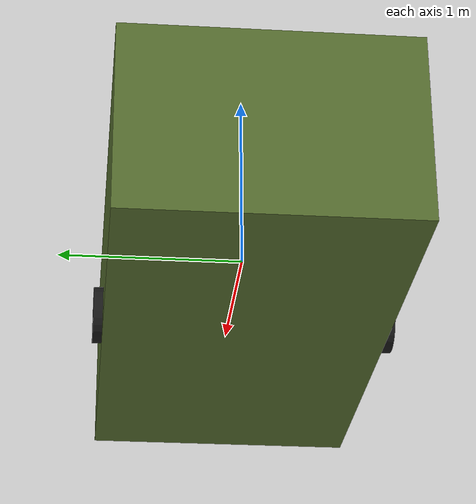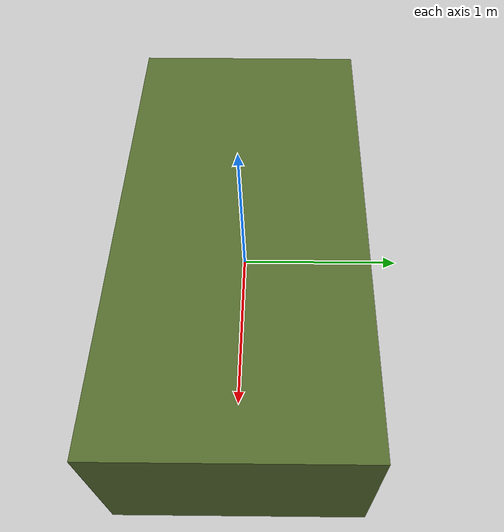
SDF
<?xml version="1.0"?>
<sdf version="1.9">
  <model name="tank">
    <static>false</static>

    <!-- Body: box 3.0 x 1.5 x 1.0 m, mass 50000 kg -->
    <link name="base_link">
      <inertial>
        <mass>50000</mass>
        <inertia>
          <ixx>13541.67</ixx><ixy>0</ixy><ixz>0</ixz>
          <iyy>41666.67</iyy><iyz>0</iyz>
          <izz>46875.00</izz>
        </inertia>
      </inertial>
      <collision name="body_collision">
        <geometry>
          <box><size>3.0 1.5 1.0</size></box>
        </geometry>
      </collision>
      <visual name="body_visual">
        <geometry>
          <box><size>3.0 1.5 1.0</size></box>
        </geometry>
        <material>
          <ambient>0.33 0.42 0.18 1</ambient>
          <diffuse>0.33 0.42 0.18 1</diffuse>
        </material>
      </visual>

      <!-- 2D Lidar sensor (360 deg, 500 m range, 10 Hz) -->
      <sensor name="lidar" type="gpu_lidar">
        <pose>0 0 0.55 0 0 0</pose>
        <topic>scan</topic>
        <update_rate>10</update_rate>
        <lidar>
          <scan>
            <horizontal>
              <samples>360</samples>
              <resolution>1</resolution>
              <min_angle>0</min_angle>
              <max_angle>6.283185</max_angle>
            </horizontal>
          </scan>
          <range>
            <min>0.5</min>
            <max>500.0</max>
          </range>
        </lidar>
        <always_on>true</always_on>
        <visualize>true</visualize>
      </sensor>

      <!-- IMU sensor (50 Hz) -->
      <sensor name="imu" type="imu">
        <update_rate>50</update_rate>
        <always_on>true</always_on>
      </sensor>

      <!-- Contact sensor -->
      <sensor name="contact" type="contact">
        <contact>
          <collision>body_collision</collision>
        </contact>
        <update_rate>10</update_rate>
        <always_on>true</always_on>
      </sensor>
    </link>

    <!-- Left wheel -->
    <link name="left_wheel">
      <pose>0 0.75 -0.35 -1.5708 0 0</pose>
      <inertial>
        <mass>100</mass>
        <inertia>
          <ixx>0.5625</ixx><ixy>0</ixy><ixz>0</ixz>
          <iyy>0.5625</iyy><iyz>0</iyz>
          <izz>1.125</izz>
        </inertia>
      </inertial>
      <collision name="left_wheel_collision">
        <geometry>
          <cylinder><radius>0.15</radius><length>0.1</length></cylinder>
        </geometry>
      </collision>
      <visual name="left_wheel_visual">
        <geometry>
          <cylinder><radius>0.15</radius><length>0.1</length></cylinder>
        </geometry>
        <material>
          <ambient>0.1 0.1 0.1 1</ambient>
          <diffuse>0.1 0.1 0.1 1</diffuse>
        </material>
      </visual>
    </link>

    <!-- Right wheel -->
    <link name="right_wheel">
      <pose>0 -0.75 -0.35 -1.5708 0 0</pose>
      <inertial>
        <mass>100</mass>
        <inertia>
          <ixx>0.5625</ixx><ixy>0</ixy><ixz>0</ixz>
          <iyy>0.5625</iyy><iyz>0</iyz>
          <izz>1.125</izz>
        </inertia>
      </inertial>
      <collision name="right_wheel_collision">
        <geometry>
          <cylinder><radius>0.15</radius><length>0.1</length></cylinder>
        </geometry>
      </collision>
      <visual name="right_wheel_visual">
        <geometry>
          <cylinder><radius>0.15</radius><length>0.1</length></cylinder>
        </geometry>
        <material>
          <ambient>0.1 0.1 0.1 1</ambient>
          <diffuse>0.1 0.1 0.1 1</diffuse>
        </material>
      </visual>
    </link>

    <!-- Caster (frictionless sphere) -->
    <link name="caster">
      <pose>-1.2 0 -0.45 0 0 0</pose>
      <inertial>
        <mass>50</mass>
        <inertia>
          <ixx>0.02</ixx><ixy>0</ixy><ixz>0</ixz>
          <iyy>0.02</iyy><iyz>0</iyz>
          <izz>0.02</izz>
        </inertia>
      </inertial>
      <collision name="caster_collision">
        <geometry>
          <sphere><radius>0.05</radius></sphere>
        </geometry>
        <surface>
          <friction>
            <ode><mu>0</mu><mu2>0</mu2></ode>
          </friction>
        </surface>
      </collision>
    </link>

    <!-- Joints -->
    <joint name="left_wheel_joint" type="revolute">
      <parent>base_link</parent>
      <child>left_wheel</child>
      <axis><xyz>0 0 1</xyz></axis>
    </joint>
    <joint name="right_wheel_joint" type="revolute">
      <parent>base_link</parent>
      <child>right_wheel</child>
      <axis><xyz>0 0 1</xyz></axis>
    </joint>
    <joint name="caster_joint" type="ball">
      <parent>base_link</parent>
      <child>caster</child>
    </joint>

    <!-- Differential drive plugin -->
    <plugin filename="gz-sim-diff-drive-system" name="gz::sim::systems::DiffDrive">
      <left_joint>left_wheel_joint</left_joint>
      <right_joint>right_wheel_joint</right_joint>
      <wheel_separation>1.5</wheel_separation>
      <wheel_radius>0.15</wheel_radius>
      <max_linear_acceleration>5.0</max_linear_acceleration>
      <max_linear_velocity>15.0</max_linear_velocity>
      <max_angular_velocity>0.5</max_angular_velocity>
      <topic>cmd_vel</topic>
      <odom_topic>odom</odom_topic>
    </plugin>

    <!-- Pose publisher -->
    <plugin filename="gz-sim-pose-publisher-system" name="gz::sim::systems::PosePublisher">
      <publish_link_pose>false</publish_link_pose>
      <publish_model_pose>true</publish_model_pose>
      <update_frequency>50</update_frequency>
    </plugin>
  </model>
</sdf>
